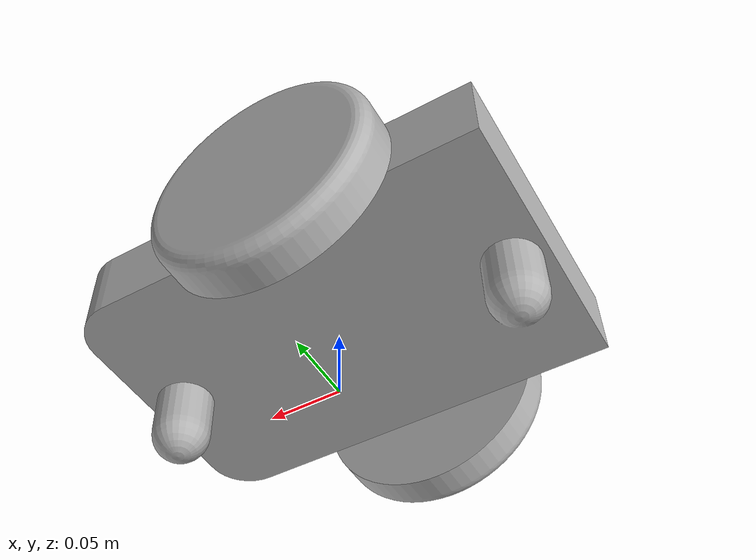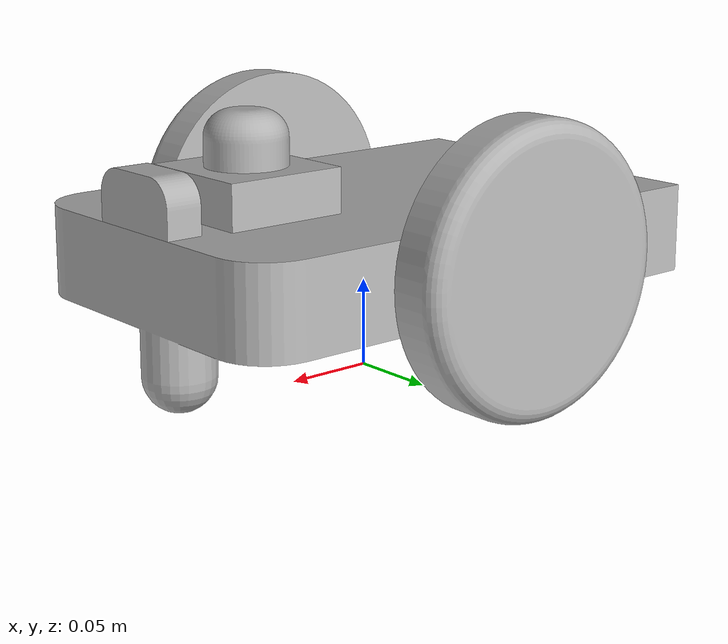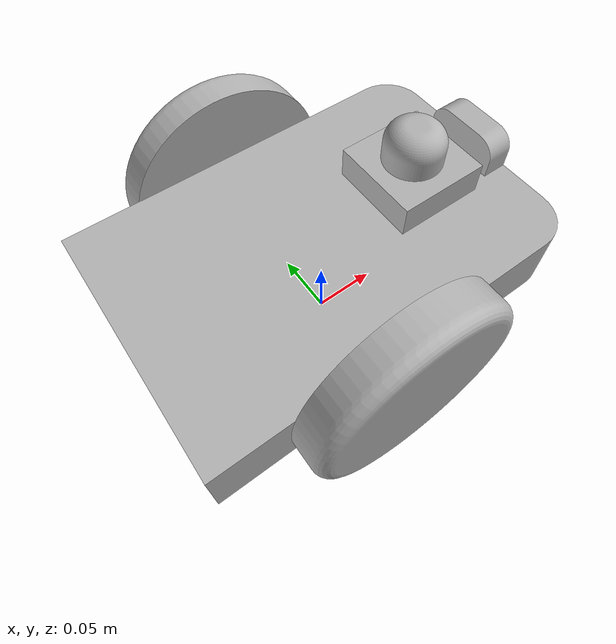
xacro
<?xml version="1.0" ?>
<robot name="simplebot" xmlns:xacro="http://www.ros.org/wiki/xacro">
<xacro:include filename="$(find simplebot_model)/gazebo/simplebot_materials.gazebo" />
<xacro:include filename="$(find simplebot_model)/urdf/materials.xacro" />
<xacro:include filename="$(find simplebot_model)/urdf/simplebot.trans" />
<xacro:include filename="$(find simplebot_model)/gazebo/simplebot_physics.gazebo" />
<xacro:include filename="$(find simplebot_model)/gazebo/simplebot_plugin.gazebo" />
<link name="base_link">
  <inertial>
    <origin xyz="-0.0008958133316573727 0.0 0.07334595632265822" rpy="0 0 0"/>
    <mass value="24.253315883237242"/>
    <inertia ixx="0.084089" iyy="0.193759" izz="0.264182" ixy="-0.0" iyz="0.0" ixz="3.6e-05"/>
  </inertial>
  <visual>
    <origin xyz="0 0 0" rpy="0 0 0"/>
    <geometry>
      <mesh filename="package://simplebot_model/meshes/base_link.stl" scale="0.001 0.001 0.001"/>
    </geometry>
    <material name="silver"/>
  </visual>
  <collision>
    <origin xyz="0 0 0" rpy="0 0 0"/>
    <geometry>
      <mesh filename="package://simplebot_model/meshes/base_link.stl" scale="0.001 0.001 0.001"/>
    </geometry>
  </collision>
</link>

<link name="rw_link_1">
  <inertial>
    <origin xyz="3.783431901105416e-15 -0.014774612406027232 1.1102230246251565e-16" rpy="0 0 0"/>
    <mass value="4.6526942950040535"/>
    <inertia ixx="0.007668" iyy="0.014653" izz="0.007668" ixy="0.0" iyz="-0.0" ixz="0.0"/>
  </inertial>
  <visual>
    <origin xyz="0.015 0.1 -0.075" rpy="0 0 0"/>
    <geometry>
      <mesh filename="package://simplebot_model/meshes/rw_link_1.stl" scale="0.001 0.001 0.001"/>
    </geometry>
    <material name="silver"/>
  </visual>
  <collision>
    <origin xyz="0.015 0.1 -0.075" rpy="0 0 0"/>
    <geometry>
      <mesh filename="package://simplebot_model/meshes/rw_link_1.stl" scale="0.001 0.001 0.001"/>
    </geometry>
  </collision>
</link>

<link name="lw_link_1">
  <inertial>
    <origin xyz="-8.621575675604731e-16 0.014774612406027288 -1.970645868709653e-15" rpy="0 0 0"/>
    <mass value="4.6526942950040535"/>
    <inertia ixx="0.007668" iyy="0.014653" izz="0.007668" ixy="-0.0" iyz="0.0" ixz="0.0"/>
  </inertial>
  <visual>
    <origin xyz="0.015 -0.1 -0.075" rpy="0 0 0"/>
    <geometry>
      <mesh filename="package://simplebot_model/meshes/lw_link_1.stl" scale="0.001 0.001 0.001"/>
    </geometry>
    <material name="silver"/>
  </visual>
  <collision>
    <origin xyz="0.015 -0.1 -0.075" rpy="0 0 0"/>
    <geometry>
      <mesh filename="package://simplebot_model/meshes/lw_link_1.stl" scale="0.001 0.001 0.001"/>
    </geometry>
  </collision>
</link>

<link name="holder_link_1">
  <inertial>
    <origin xyz="2.7755575615628914e-17 -1.7763568394002505e-17 0.012500000000000067" rpy="0 0 0"/>
    <mass value="0.9616249999999998"/>
    <inertia ixx="0.000443" iyy="0.000443" izz="0.000785" ixy="-0.0" iyz="0.0" ixz="0.0"/>
  </inertial>
  <visual>
    <origin xyz="-0.08 0.0 -0.1" rpy="0 0 0"/>
    <geometry>
      <mesh filename="package://simplebot_model/meshes/holder_link_1.stl" scale="0.001 0.001 0.001"/>
    </geometry>
    <material name="silver"/>
  </visual>
  <collision>
    <origin xyz="-0.08 0.0 -0.1" rpy="0 0 0"/>
    <geometry>
      <mesh filename="package://simplebot_model/meshes/holder_link_1.stl" scale="0.001 0.001 0.001"/>
    </geometry>
  </collision>
</link>

<link name="camera_link_1">
  <inertial>
    <origin xyz="0.0 -2.923226713048494e-17 0.014339567492747979" rpy="0 0 0"/>
    <mass value="0.2674383802440297"/>
    <inertia ixx="9.3e-05" iyy="2.8e-05" izz="8.3e-05" ixy="0.0" iyz="0.0" ixz="-0.0"/>
  </inertial>
  <visual>
    <origin xyz="-0.14 0.0 -0.1" rpy="0 0 0"/>
    <geometry>
      <mesh filename="package://simplebot_model/meshes/camera_link_1.stl" scale="0.001 0.001 0.001"/>
    </geometry>
    <material name="silver"/>
  </visual>
  <collision>
    <origin xyz="-0.14 0.0 -0.1" rpy="0 0 0"/>
    <geometry>
      <mesh filename="package://simplebot_model/meshes/camera_link_1.stl" scale="0.001 0.001 0.001"/>
    </geometry>
  </collision>
</link>

<link name="lidar_link_1">
  <inertial>
    <origin xyz="1.3877787807814457e-17 -1.7763568394002502e-17 0.013418548209924386" rpy="0 0 0"/>
    <mass value="0.32894051405948144"/>
    <inertia ixx="5.9e-05" iyy="5.9e-05" izz="7.7e-05" ixy="0.0" iyz="-0.0" ixz="-0.0"/>
  </inertial>
  <visual>
    <origin xyz="-0.08 0.0 -0.125" rpy="0 0 0"/>
    <geometry>
      <mesh filename="package://simplebot_model/meshes/lidar_link_1.stl" scale="0.001 0.001 0.001"/>
    </geometry>
    <material name="silver"/>
  </visual>
  <collision>
    <origin xyz="-0.08 0.0 -0.125" rpy="0 0 0"/>
    <geometry>
      <mesh filename="package://simplebot_model/meshes/lidar_link_1.stl" scale="0.001 0.001 0.001"/>
    </geometry>
  </collision>
</link>

<joint name="rw_joint" type="continuous">
  <origin xyz="-0.015 -0.1 0.075" rpy="0 0 0"/>
  <parent link="base_link"/>
  <child link="rw_link_1"/>
  <axis xyz="0.0 1.0 0.0"/>
</joint>

<joint name="lw_joint" type="continuous">
  <origin xyz="-0.015 0.1 0.075" rpy="0 0 0"/>
  <parent link="base_link"/>
  <child link="lw_link_1"/>
  <axis xyz="0.0 1.0 0.0"/>
</joint>

<joint name="holder_joint" type="fixed">
  <origin xyz="0.08 0.0 0.1" rpy="0 0 0"/>
  <parent link="base_link"/>
  <child link="holder_link_1"/>
</joint>

<joint name="camera_joint" type="fixed">
  <origin xyz="0.14 0.0 0.1" rpy="0 0 0"/>
  <parent link="base_link"/>
  <child link="camera_link_1"/>
</joint>

<joint name="lidar_joint" type="fixed">
  <origin xyz="0.0 0.0 0.025" rpy="0 0 0"/>
  <parent link="holder_link_1"/>
  <child link="lidar_link_1"/>
</joint>

</robot>

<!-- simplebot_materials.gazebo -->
<robot name="simplebot" xmlns:xacro="http://www.ros.org/wiki/xacro" >

<xacro:property name="body_color" value="Gazebo/Green" />
<xacro:property name="wheels_color" value="Gazebo/Black" />
<xacro:property name="lidar_color" value="Gazebo/Red" />
<xacro:property name="camera_color" value="Gazebo/Blue" />

<gazebo reference="base_link">
  <material>${body_color}</material>
</gazebo>

<gazebo reference="rw_link_1">
  <material>${wheels_color}</material>
</gazebo>

<gazebo reference="lw_link_1">
  <material>${wheels_color}</material>
</gazebo>

<gazebo reference="lidar_link_1">
  <material>${lidar_color}</material>
</gazebo>

<gazebo reference="camera_link_1">
  <material>${camera_color}</material>
</gazebo>

</robot>

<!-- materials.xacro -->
<robot name="simplebot" xmlns:xacro="http://www.ros.org/wiki/xacro" >

<material name="silver">
  <color rgba="0.700 0.700 0.700 1.000"/>
</material>

</robot>
